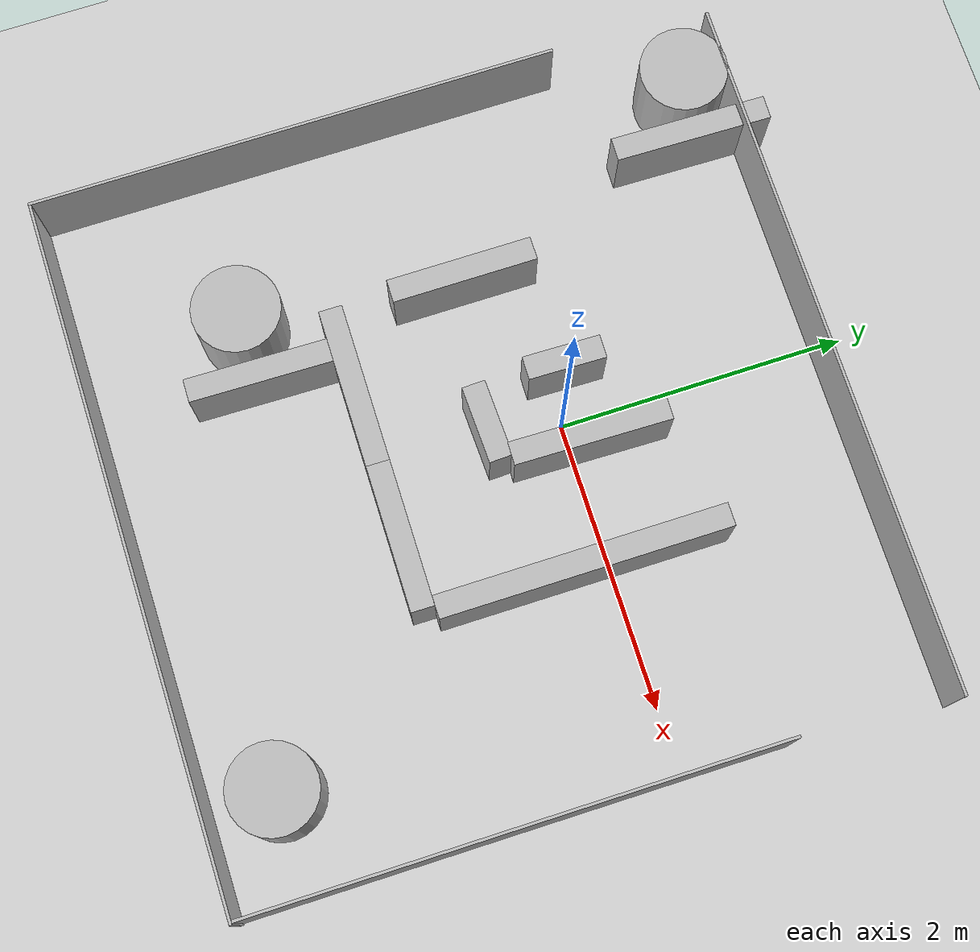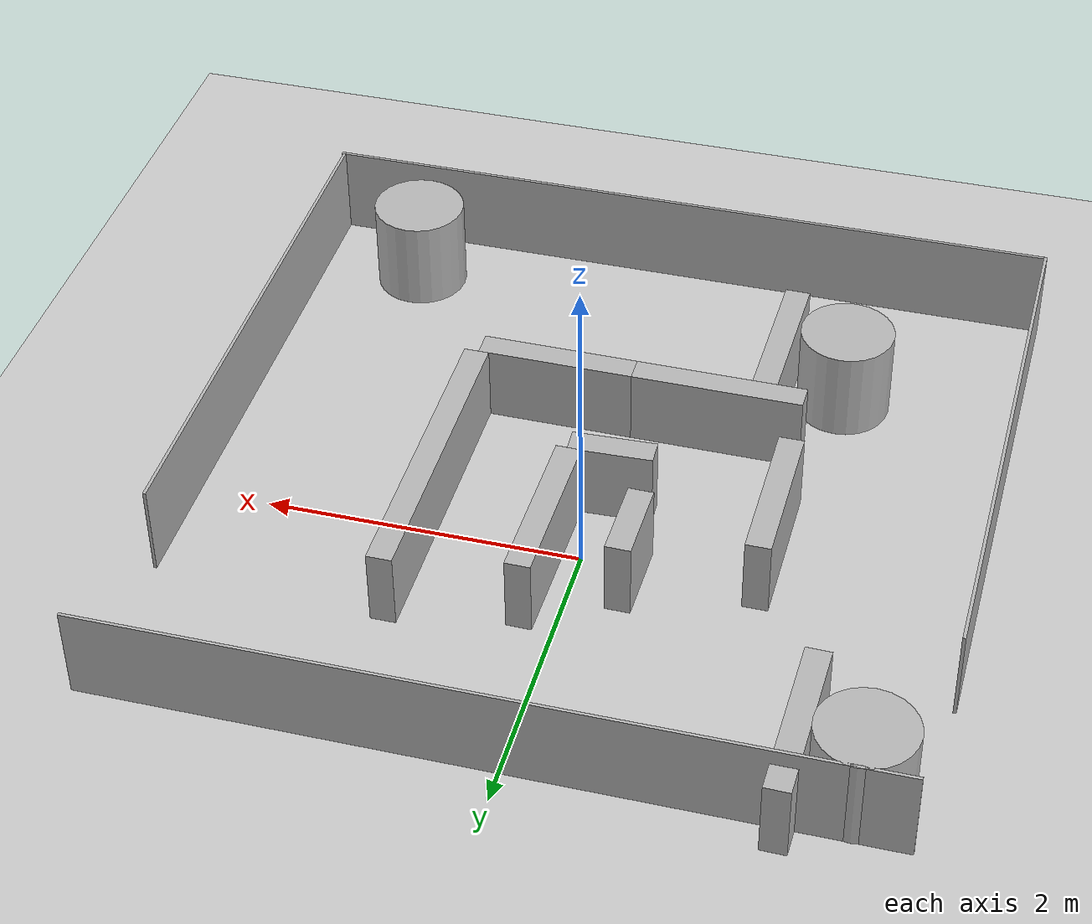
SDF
<sdf version="1.6">
 <world name="default">
  <light name="sun" type="directional">
   <pose>0 0 10 0 -0 0</pose>
   <diffuse>0.8 0.8 0.8 1</diffuse>
   <specular>0.2 0.2 0.2 1</specular>
   <attenuation>
    <range>1000</range>
    <constant>0.9</constant>
    <linear>0.01</linear>
    <quadratic>0.001</quadratic>
   </attenuation>
   <direction>-0.5 0.1 -0.9</direction>
  </light>
  <model name="ground_plane">
   <static>1</static>
   <link name="link">
    <collision name="collision">
     <geometry><plane><normal>0 0 1</normal><size>100 100</size></plane></geometry>
     <surface><friction><ode><mu>100</mu><mu2>50</mu2></ode></friction></surface>
    </collision>
    <visual name="visual">
     <cast_shadows>0</cast_shadows>
     <geometry><plane><normal>0 0 1</normal><size>100 100</size></plane></geometry>
     <material>
      <script><uri>file://media/materials/scripts/gazebo.material</uri><name>Gazebo/Grey</name></script>
     </material>
    </visual>
   </link>
  </model>
  <gravity>0 0 -9.8</gravity>
  <magnetic_field>6e-06 2.3e-05 -4.2e-05</magnetic_field>
  <atmosphere type="adiabatic"/>
  <physics name="default_physics" default="0" type="ode">
   <max_step_size>0.001</max_step_size>
   <real_time_factor>1</real_time_factor>
   <real_time_update_rate>1000</real_time_update_rate>
  </physics>
  <scene><ambient>0.4 0.4 0.4 1</ambient><background>0.7 0.7 0.7 1</background><shadows>1</shadows></scene>
  <spherical_coordinates>
   <surface_model>EARTH_WGS84</surface_model>
   <latitude_deg>0</latitude_deg>
   <longitude_deg>0</longitude_deg>
   <elevation>0</elevation>
   <heading_deg>0</heading_deg>
  </spherical_coordinates>
  <model name="border_Top">
   <pose>0.113867 1.7866 0.3 -1.4e-05 -0 -4e-06</pose>
   <static>1</static>
   <link name="link">
    <collision name="collision">
     <geometry><box><size>4.88 0.02 0.6</size></box></geometry>
     <surface><friction><ode><mu>0.01</mu><mu2>0.01</mu2></ode></friction></surface>
    </collision>
    <visual name="visual"><geometry><box><size>4.88 0.02 0.6</size></box></geometry></visual>
    <inertial>
     <inertia><ixx>1</ixx><ixy>0</ixy><ixz>0</ixz><iyy>1</iyy><iyz>0</iyz><izz>1</izz></inertia>
     <mass>1</mass>
    </inertial>
   </link>
  </model>
  <model name="border_Bot">
   <static>1</static>
   <pose>0.051604 -2.95077 0.3 1e-05 -0 2e-06</pose>
   <link name="link">
    <collision name="collision">
     <geometry><box><size>4.88 0.02 0.6</size></box></geometry>
     <surface><friction><ode><mu>0.01</mu><mu2>0.01</mu2></ode></friction></surface>
    </collision>
    <visual name="visual"><geometry><box><size>4.88 0.02 0.6</size></box></geometry></visual>
    <inertial>
     <inertia><ixx>1</ixx><ixy>0</ixy><ixz>0</ixz><iyy>1</iyy><iyz>0</iyz><izz>1</izz></inertia>
     <mass>1</mass>
    </inertial>
   </link>
  </model>
  <model name="border_Left">
   <static>1</static>
   <pose>-2.38221 -1.12977 0.3 0 7e-06 0</pose>
   <link name="link">
    <collision name="collision">
     <geometry><box><size>0.02 3.66 0.6</size></box></geometry>
     <surface><friction><ode><mu>0.01</mu><mu2>0.01</mu2></ode></friction></surface>
    </collision>
    <visual name="visual"><geometry><box><size>0.02 3.66 0.6</size></box></geometry></visual>
    <inertial>
     <inertia><ixx>1</ixx><ixy>0</ixy><ixz>0</ixz><iyy>1</iyy><iyz>0</iyz><izz>1</izz></inertia>
     <mass>1</mass>
    </inertial>
   </link>
  </model>
  <model name="border_Right">
   <static>1</static>
   <pose>2.4713 -1.10936 0.3 0 -8e-06 -1e-06</pose>
   <link name="link">
    <collision name="collision">
     <geometry><box><size>0.02 3.66 0.6</size></box></geometry>
     <surface><friction><ode><mu>0.01</mu><mu2>0.01</mu2></ode></friction></surface>
    </collision>
    <visual name="visual"><geometry><box><size>0.02 3.66 0.6</size></box></geometry></visual>
    <inertial>
     <inertia><ixx>1</ixx><ixy>0</ixy><ixz>0</ixz><iyy>1</iyy><iyz>0</iyz><izz>1</izz></inertia>
     <mass>1</mass>
    </inertial>
   </link>
  </model>
  <model name="box_1">
   <static>1</static>
   <pose>-1.1067 -0.346602 0.250001 0 3e-06 3e-06</pose>
   <link name="link">
    <collision name="collision">
     <geometry><box><size>0.16 1 0.5</size></box></geometry>
     <surface><friction><ode><mu>0.01</mu><mu2>0.01</mu2></ode></friction></surface>
    </collision>
    <visual name="visual"><geometry><box><size>0.16 1 0.5</size></box></geometry></visual>
    <inertial>
     <inertia><ixx>1</ixx><ixy>0</ixy><ixz>0</ixz><iyy>1</iyy><iyz>0</iyz><izz>1</izz></inertia>
     <mass>1</mass>
    </inertial>
   </link>
  </model>
  <model name="cylinder_1">
   <pose>1.78518 -2.4846 0.3 0 -0 0</pose>
   <static>1</static>
   <link name="link">
    <collision name="collision">
     <geometry><cylinder><radius>0.3</radius><length>0.6</length></cylinder></geometry>
    </collision>
    <visual name="visual">
     <geometry><cylinder><radius>0.3</radius><length>0.6</length></cylinder></geometry>
    </visual>
   </link>
  </model>
  <model name="cylinder_1_clone">
   <pose>-1.98165 1.50218 0.3 0 -0 0</pose>
   <static>1</static>
   <link name="link">
    <collision name="collision">
     <geometry><cylinder><radius>0.3</radius><length>0.6</length></cylinder></geometry>
    </collision>
    <visual name="visual">
     <geometry><cylinder><radius>0.3</radius><length>0.6</length></cylinder></geometry>
    </visual>
   </link>
  </model>
  <model name="box_1_clone">
   <static>1</static>
   <pose>0.485944 -1.2666 0.250001 -3e-06 -0 -1.57648</pose>
   <link name="link">
    <collision name="collision">
     <geometry><box><size>0.16 1 0.5</size></box></geometry>
     <surface><friction><ode><mu>0.01</mu><mu2>0.01</mu2></ode></friction></surface>
    </collision>
    <visual name="visual"><geometry><box><size>0.16 1 0.5</size></box></geometry></visual>
    <inertial>
     <inertia><ixx>1</ixx><ixy>0</ixy><ixz>0</ixz><iyy>1</iyy><iyz>0</iyz><izz>1</izz></inertia>
     <mass>1</mass>
    </inertial>
   </link>
  </model>
  <model name="box_1_clone_clone">
   <static>1</static>
   <pose>-0.557755 -1.26077 0.250001 -3e-06 -0 -1.57648</pose>
   <link name="link">
    <collision name="collision">
     <geometry><box><size>0.16 1.10724 0.5</size></box></geometry>
     <surface><friction><ode><mu>0.01</mu><mu2>0.01</mu2></ode></friction></surface>
    </collision>
    <visual name="visual"><geometry><box><size>0.16 1.10724 0.5</size></box></geometry></visual>
    <inertial>
     <inertia><ixx>1</ixx><ixy>0</ixy><ixz>0</ixz><iyy>1</iyy><iyz>0</iyz><izz>1</izz></inertia>
     <mass>1</mass>
    </inertial>
   </link>
  </model>
  <model name="box_1_clone_0">
   <static>1</static>
   <pose>0.998759 -0.192477 0.250001 0 3e-06 3e-06</pose>
   <link name="link">
    <collision name="collision">
     <geometry><box><size>0.16 1.9931 0.5</size></box></geometry>
     <surface><friction><ode><mu>0.01</mu><mu2>0.01</mu2></ode></friction></surface>
    </collision>
    <visual name="visual"><geometry><box><size>0.16 1.9931 0.5</size></box></geometry></visual>
    <inertial>
     <inertia><ixx>1</ixx><ixy>0</ixy><ixz>0</ixz><iyy>1</iyy><iyz>0</iyz><izz>1</izz></inertia>
     <mass>1</mass>
    </inertial>
   </link>
  </model>
  <model name="box_1_clone_clone_0_clone">
   <static>1</static>
   <pose>-0.324878 0.109691 0.250001 0 3e-06 -0.01727</pose>
   <link name="link">
    <collision name="collision">
     <geometry><box><size>0.16 0.53345 0.5</size></box></geometry>
     <surface><friction><ode><mu>0.01</mu><mu2>0.01</mu2></ode></friction></surface>
    </collision>
    <visual name="visual"><geometry><box><size>0.16 0.53345 0.5</size></box></geometry></visual>
    <inertial>
     <inertia><ixx>1</ixx><ixy>0</ixy><ixz>0</ixz><iyy>1</iyy><iyz>0</iyz><izz>1</izz></inertia>
     <mass>1</mass>
    </inertial>
   </link>
  </model>
  <model name="box_1_clone_clone_0_clone_clone">
   <static>1</static>
   <pose>0.198051 0.116743 0.250001 0 3e-06 -0.01727</pose>
   <link name="link">
    <collision name="collision">
     <geometry><box><size>0.16 1.08236 0.5</size></box></geometry>
     <surface><friction><ode><mu>0.01</mu><mu2>0.01</mu2></ode></friction></surface>
    </collision>
    <visual name="visual"><geometry><box><size>0.16 1.08236 0.5</size></box></geometry></visual>
    <inertial>
     <inertia><ixx>1</ixx><ixy>0</ixy><ixz>0</ixz><iyy>1</iyy><iyz>0</iyz><izz>1</izz></inertia>
     <mass>1</mass>
    </inertial>
   </link>
  </model>
  <model name="box_1_clone_clone_0_clone_0">
   <static>1</static>
   <pose>-0.065059 -0.504777 0.250001 -3e-06 -0 -1.53318</pose>
   <link name="link">
    <collision name="collision">
     <geometry><box><size>0.16 0.533452 0.5</size></box></geometry>
     <surface><friction><ode><mu>0.01</mu><mu2>0.01</mu2></ode></friction></surface>
    </collision>
    <visual name="visual"><geometry><box><size>0.16 0.533452 0.5</size></box></geometry></visual>
    <inertial>
     <inertia><ixx>1</ixx><ixy>0</ixy><ixz>0</ixz><iyy>1</iyy><iyz>0</iyz><izz>1</izz></inertia>
     <mass>1</mass>
    </inertial>
   </link>
  </model>
  <model name="box_1_clone_clone_0_clone_clone_clone">
   <static>1</static>
   <pose>-1.59716 1.43135 0.250001 0 3e-06 -0.01727</pose>
   <link name="link">
    <collision name="collision">
     <geometry><box><size>0.16 1.08236 0.5</size></box></geometry>
     <surface><friction><ode><mu>0.01</mu><mu2>0.01</mu2></ode></friction></surface>
    </collision>
    <visual name="visual"><geometry><box><size>0.16 1.08236 0.5</size></box></geometry></visual>
    <inertial>
     <inertia><ixx>1</ixx><ixy>0</ixy><ixz>0</ixz><iyy>1</iyy><iyz>0</iyz><izz>1</izz></inertia>
     <mass>1</mass>
    </inertial>
   </link>
  </model>
  <model name="box_1_clone_clone_0_clone_clone_clone_1">
   <static>1</static>
   <pose>-0.847412 -1.77407 0.250001 0 3e-06 -0.01727</pose>
   <link name="link">
    <collision name="collision">
     <geometry><box><size>0.16 1.08236 0.5</size></box></geometry>
     <surface><friction><ode><mu>0.01</mu><mu2>0.01</mu2></ode></friction></surface>
    </collision>
    <visual name="visual"><geometry><box><size>0.16 1.08236 0.5</size></box></geometry></visual>
    <inertial>
     <inertia><ixx>1</ixx><ixy>0</ixy><ixz>0</ixz><iyy>1</iyy><iyz>0</iyz><izz>1</izz></inertia>
     <mass>1</mass>
    </inertial>
   </link>
  </model>
  <model name="cylinder_1_clone_clone">
   <pose>-1.26658 -1.84747 0.3 0 -0 0</pose>
   <static>1</static>
   <link name="link">
    <collision name="collision">
     <geometry><cylinder><radius>0.3</radius><length>0.6</length></cylinder></geometry>
    </collision>
    <visual name="visual">
     <geometry><cylinder><radius>0.3</radius><length>0.6</length></cylinder></geometry>
    </visual>
   </link>
  </model>
 </world>
</sdf>
